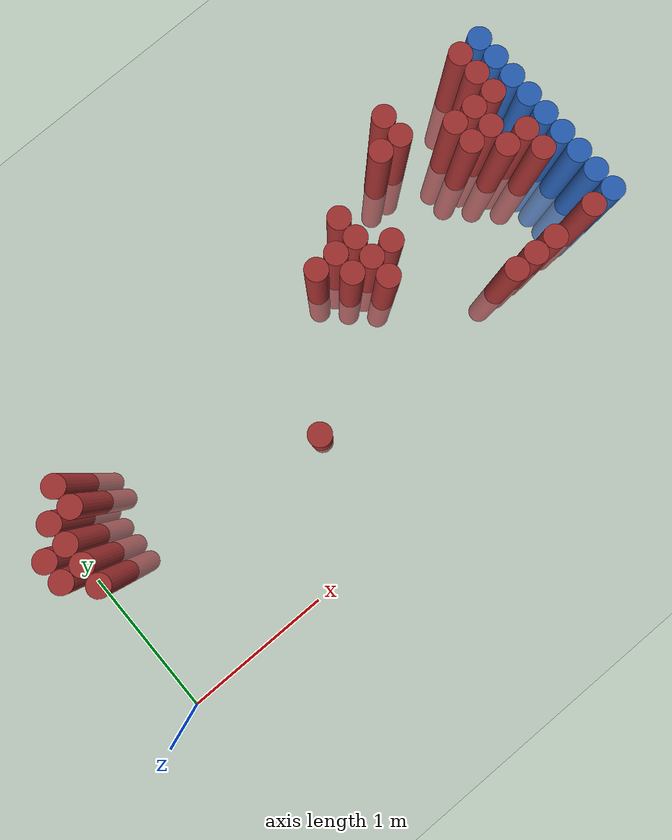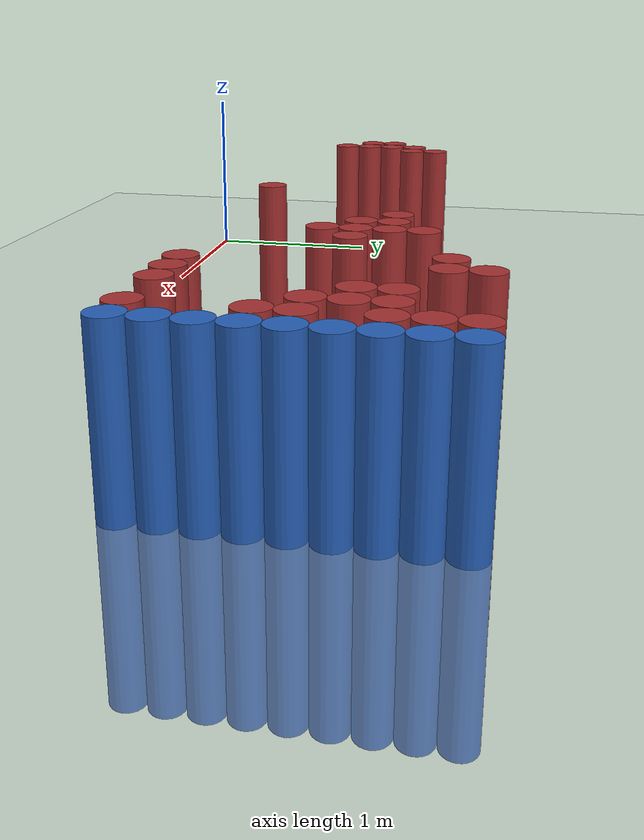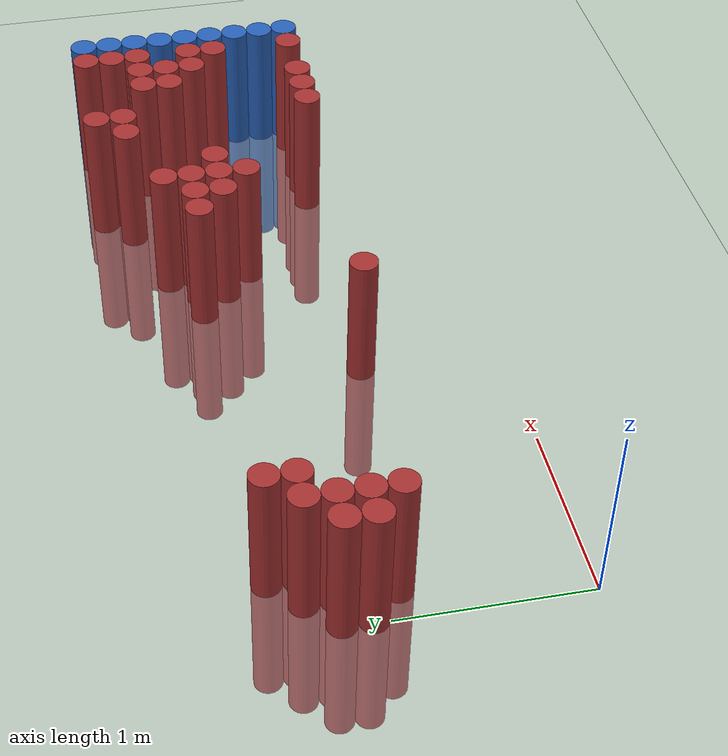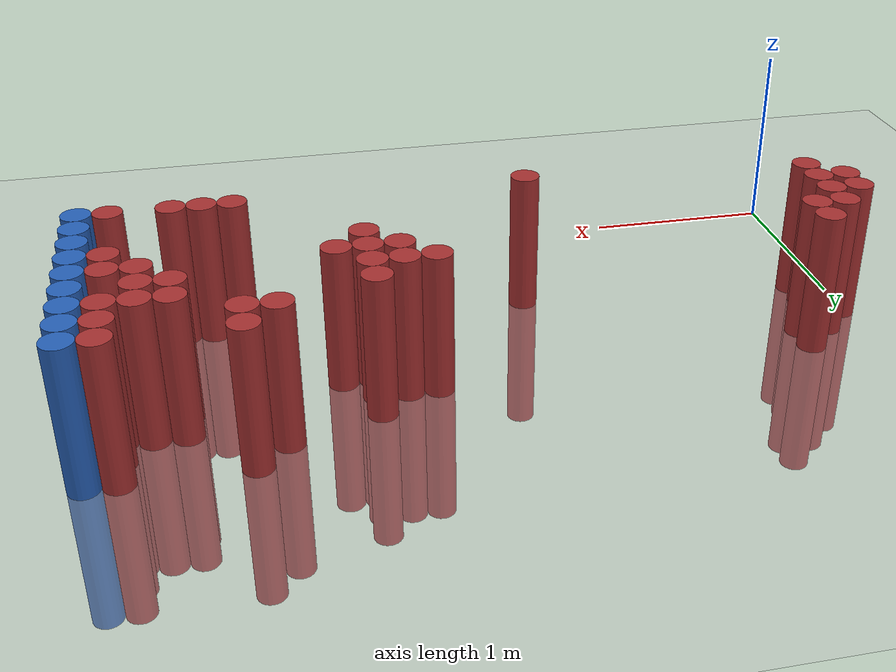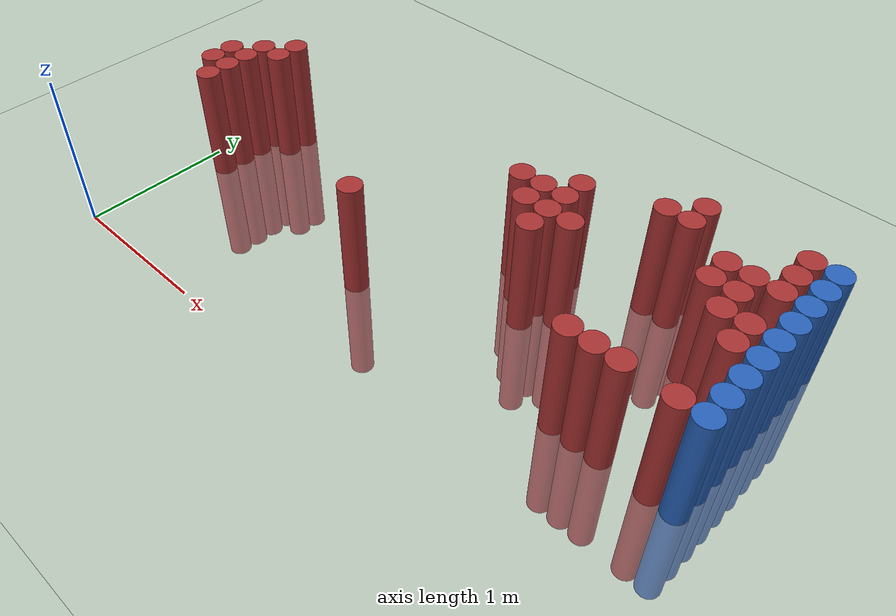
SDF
<sdf version="1.6">
 <world name="default">
  <model name="ground_plane">
   <static>1</static>
   <link name="link">
    <collision name="collision">
     <geometry><plane><normal>0 0 1</normal><size>100 100</size></plane></geometry>
     <surface><friction><ode><mu>100</mu><mu2>50</mu2></ode></friction></surface>
    </collision>
    <visual name="visual">
     <cast_shadows>0</cast_shadows>
     <geometry><plane><normal>0 0 1</normal><size>100 100</size></plane></geometry>
     <material>
      <script><uri>file://media/materials/scripts/gazebo.material</uri><name>Gazebo/Grey</name></script>
     </material>
    </visual>
   </link>
  </model>
  <model name="unit_cylinder_124">
   <static>1</static>
   <pose>3.925000 0.775000 0.000000 0.000000 0.000000 0.000000</pose>
   <link name="link">
    <inertial>
     <mass>1</mass>
     <inertia><ixx>0.145833</ixx><ixy>0</ixy><ixz>0</ixz><iyy>0.145833</iyy><iyz>0</iyz><izz>0.125</izz></inertia>
    </inertial>
    <collision name="collision">
     <geometry><cylinder><radius>0.075000</radius><length>1.5</length></cylinder></geometry>
    </collision>
    <visual name="visual">
     <geometry><cylinder><radius>0.075000</radius><length>1.5</length></cylinder></geometry>
     <material>
      <ambient>0.152000 0.379000 0.720000 1</ambient>
      <diffuse>0.152000 0.379000 0.720000 1</diffuse>
     </material>
     <material>
      <script><name>Gazebo/Grey</name><uri>file://media/materials/scripts/gazebo.material</uri></script>
     </material>
    </visual>
   </link>
  </model>
  <model name="unit_cylinder_126">
   <static>1</static>
   <pose>3.925000 0.925000 0.000000 0.000000 0.000000 0.000000</pose>
   <link name="link">
    <inertial>
     <mass>1</mass>
     <inertia><ixx>0.145833</ixx><ixy>0</ixy><ixz>0</ixz><iyy>0.145833</iyy><iyz>0</iyz><izz>0.125</izz></inertia>
    </inertial>
    <collision name="collision">
     <geometry><cylinder><radius>0.075000</radius><length>1.5</length></cylinder></geometry>
    </collision>
    <visual name="visual">
     <geometry><cylinder><radius>0.075000</radius><length>1.5</length></cylinder></geometry>
     <material>
      <ambient>0.152000 0.379000 0.720000 1</ambient>
      <diffuse>0.152000 0.379000 0.720000 1</diffuse>
     </material>
     <material>
      <script><name>Gazebo/Grey</name><uri>file://media/materials/scripts/gazebo.material</uri></script>
     </material>
    </visual>
   </link>
  </model>
  <model name="unit_cylinder_128">
   <static>1</static>
   <pose>3.925000 1.075000 0.000000 0.000000 0.000000 0.000000</pose>
   <link name="link">
    <inertial>
     <mass>1</mass>
     <inertia><ixx>0.145833</ixx><ixy>0</ixy><ixz>0</ixz><iyy>0.145833</iyy><iyz>0</iyz><izz>0.125</izz></inertia>
    </inertial>
    <collision name="collision">
     <geometry><cylinder><radius>0.075000</radius><length>1.5</length></cylinder></geometry>
    </collision>
    <visual name="visual">
     <geometry><cylinder><radius>0.075000</radius><length>1.5</length></cylinder></geometry>
     <material>
      <ambient>0.152000 0.379000 0.720000 1</ambient>
      <diffuse>0.152000 0.379000 0.720000 1</diffuse>
     </material>
     <material>
      <script><name>Gazebo/Grey</name><uri>file://media/materials/scripts/gazebo.material</uri></script>
     </material>
    </visual>
   </link>
  </model>
  <model name="unit_cylinder_130">
   <static>1</static>
   <pose>3.925000 1.225000 0.000000 0.000000 0.000000 0.000000</pose>
   <link name="link">
    <inertial>
     <mass>1</mass>
     <inertia><ixx>0.145833</ixx><ixy>0</ixy><ixz>0</ixz><iyy>0.145833</iyy><iyz>0</iyz><izz>0.125</izz></inertia>
    </inertial>
    <collision name="collision">
     <geometry><cylinder><radius>0.075000</radius><length>1.5</length></cylinder></geometry>
    </collision>
    <visual name="visual">
     <geometry><cylinder><radius>0.075000</radius><length>1.5</length></cylinder></geometry>
     <material>
      <ambient>0.152000 0.379000 0.720000 1</ambient>
      <diffuse>0.152000 0.379000 0.720000 1</diffuse>
     </material>
     <material>
      <script><name>Gazebo/Grey</name><uri>file://media/materials/scripts/gazebo.material</uri></script>
     </material>
    </visual>
   </link>
  </model>
  <model name="unit_cylinder_132">
   <static>1</static>
   <pose>3.925000 1.375000 0.000000 0.000000 0.000000 0.000000</pose>
   <link name="link">
    <inertial>
     <mass>1</mass>
     <inertia><ixx>0.145833</ixx><ixy>0</ixy><ixz>0</ixz><iyy>0.145833</iyy><iyz>0</iyz><izz>0.125</izz></inertia>
    </inertial>
    <collision name="collision">
     <geometry><cylinder><radius>0.075000</radius><length>1.5</length></cylinder></geometry>
    </collision>
    <visual name="visual">
     <geometry><cylinder><radius>0.075000</radius><length>1.5</length></cylinder></geometry>
     <material>
      <ambient>0.152000 0.379000 0.720000 1</ambient>
      <diffuse>0.152000 0.379000 0.720000 1</diffuse>
     </material>
     <material>
      <script><name>Gazebo/Grey</name><uri>file://media/materials/scripts/gazebo.material</uri></script>
     </material>
    </visual>
   </link>
  </model>
  <model name="unit_cylinder_134">
   <static>1</static>
   <pose>3.925000 1.525000 0.000000 0.000000 0.000000 0.000000</pose>
   <link name="link">
    <inertial>
     <mass>1</mass>
     <inertia><ixx>0.145833</ixx><ixy>0</ixy><ixz>0</ixz><iyy>0.145833</iyy><iyz>0</iyz><izz>0.125</izz></inertia>
    </inertial>
    <collision name="collision">
     <geometry><cylinder><radius>0.075000</radius><length>1.5</length></cylinder></geometry>
    </collision>
    <visual name="visual">
     <geometry><cylinder><radius>0.075000</radius><length>1.5</length></cylinder></geometry>
     <material>
      <ambient>0.152000 0.379000 0.720000 1</ambient>
      <diffuse>0.152000 0.379000 0.720000 1</diffuse>
     </material>
     <material>
      <script><name>Gazebo/Grey</name><uri>file://media/materials/scripts/gazebo.material</uri></script>
     </material>
    </visual>
   </link>
  </model>
  <model name="unit_cylinder_136">
   <static>1</static>
   <pose>3.925000 1.675000 0.000000 0.000000 0.000000 0.000000</pose>
   <link name="link">
    <inertial>
     <mass>1</mass>
     <inertia><ixx>0.145833</ixx><ixy>0</ixy><ixz>0</ixz><iyy>0.145833</iyy><iyz>0</iyz><izz>0.125</izz></inertia>
    </inertial>
    <collision name="collision">
     <geometry><cylinder><radius>0.075000</radius><length>1.5</length></cylinder></geometry>
    </collision>
    <visual name="visual">
     <geometry><cylinder><radius>0.075000</radius><length>1.5</length></cylinder></geometry>
     <material>
      <ambient>0.152000 0.379000 0.720000 1</ambient>
      <diffuse>0.152000 0.379000 0.720000 1</diffuse>
     </material>
     <material>
      <script><name>Gazebo/Grey</name><uri>file://media/materials/scripts/gazebo.material</uri></script>
     </material>
    </visual>
   </link>
  </model>
  <model name="unit_cylinder_138">
   <static>1</static>
   <pose>3.925000 1.825000 0.000000 0.000000 0.000000 0.000000</pose>
   <link name="link">
    <inertial>
     <mass>1</mass>
     <inertia><ixx>0.145833</ixx><ixy>0</ixy><ixz>0</ixz><iyy>0.145833</iyy><iyz>0</iyz><izz>0.125</izz></inertia>
    </inertial>
    <collision name="collision">
     <geometry><cylinder><radius>0.075000</radius><length>1.5</length></cylinder></geometry>
    </collision>
    <visual name="visual">
     <geometry><cylinder><radius>0.075000</radius><length>1.5</length></cylinder></geometry>
     <material>
      <ambient>0.152000 0.379000 0.720000 1</ambient>
      <diffuse>0.152000 0.379000 0.720000 1</diffuse>
     </material>
     <material>
      <script><name>Gazebo/Grey</name><uri>file://media/materials/scripts/gazebo.material</uri></script>
     </material>
    </visual>
   </link>
  </model>
  <model name="unit_cylinder_140">
   <static>1</static>
   <pose>3.925000 1.975000 0.000000 0.000000 0.000000 0.000000</pose>
   <link name="link">
    <inertial>
     <mass>1</mass>
     <inertia><ixx>0.145833</ixx><ixy>0</ixy><ixz>0</ixz><iyy>0.145833</iyy><iyz>0</iyz><izz>0.125</izz></inertia>
    </inertial>
    <collision name="collision">
     <geometry><cylinder><radius>0.075000</radius><length>1.5</length></cylinder></geometry>
    </collision>
    <visual name="visual">
     <geometry><cylinder><radius>0.075000</radius><length>1.5</length></cylinder></geometry>
     <material>
      <ambient>0.152000 0.379000 0.720000 1</ambient>
      <diffuse>0.152000 0.379000 0.720000 1</diffuse>
     </material>
     <material>
      <script><name>Gazebo/Grey</name><uri>file://media/materials/scripts/gazebo.material</uri></script>
     </material>
    </visual>
   </link>
  </model>
  <model name="unit_cylinder_320">
   <static>1</static>
   <pose>0.025000 1.075000 0.000000 0.000000 0.000000 0.000000</pose>
   <link name="link">
    <inertial>
     <mass>1</mass>
     <inertia><ixx>0.145833</ixx><ixy>0</ixy><ixz>0</ixz><iyy>0.145833</iyy><iyz>0</iyz><izz>0.125</izz></inertia>
    </inertial>
    <collision name="collision">
     <geometry><cylinder><radius>0.075000</radius><length>1.5</length></cylinder></geometry>
    </collision>
    <visual name="visual">
     <geometry><cylinder><radius>0.075000</radius><length>1.5</length></cylinder></geometry>
     <material>
      <ambient>0.648000 0.192000 0.192000 1</ambient>
      <diffuse>0.648000 0.192000 0.192000 1</diffuse>
     </material>
     <material>
      <script><name>Gazebo/Grey</name><uri>file://media/materials/scripts/gazebo.material</uri></script>
     </material>
    </visual>
   </link>
  </model>
  <model name="unit_cylinder_321">
   <static>1</static>
   <pose>0.025000 1.225000 0.000000 0.000000 0.000000 0.000000</pose>
   <link name="link">
    <inertial>
     <mass>1</mass>
     <inertia><ixx>0.145833</ixx><ixy>0</ixy><ixz>0</ixz><iyy>0.145833</iyy><iyz>0</iyz><izz>0.125</izz></inertia>
    </inertial>
    <collision name="collision">
     <geometry><cylinder><radius>0.075000</radius><length>1.5</length></cylinder></geometry>
    </collision>
    <visual name="visual">
     <geometry><cylinder><radius>0.075000</radius><length>1.5</length></cylinder></geometry>
     <material>
      <ambient>0.648000 0.192000 0.192000 1</ambient>
      <diffuse>0.648000 0.192000 0.192000 1</diffuse>
     </material>
     <material>
      <script><name>Gazebo/Grey</name><uri>file://media/materials/scripts/gazebo.material</uri></script>
     </material>
    </visual>
   </link>
  </model>
  <model name="unit_cylinder_326">
   <static>1</static>
   <pose>0.175000 0.925000 0.000000 0.000000 0.000000 0.000000</pose>
   <link name="link">
    <inertial>
     <mass>1</mass>
     <inertia><ixx>0.145833</ixx><ixy>0</ixy><ixz>0</ixz><iyy>0.145833</iyy><iyz>0</iyz><izz>0.125</izz></inertia>
    </inertial>
    <collision name="collision">
     <geometry><cylinder><radius>0.075000</radius><length>1.5</length></cylinder></geometry>
    </collision>
    <visual name="visual">
     <geometry><cylinder><radius>0.075000</radius><length>1.5</length></cylinder></geometry>
     <material>
      <ambient>0.648000 0.192000 0.192000 1</ambient>
      <diffuse>0.648000 0.192000 0.192000 1</diffuse>
     </material>
     <material>
      <script><name>Gazebo/Grey</name><uri>file://media/materials/scripts/gazebo.material</uri></script>
     </material>
    </visual>
   </link>
  </model>
  <model name="unit_cylinder_327">
   <static>1</static>
   <pose>0.175000 1.075000 0.000000 0.000000 0.000000 0.000000</pose>
   <link name="link">
    <inertial>
     <mass>1</mass>
     <inertia><ixx>0.145833</ixx><ixy>0</ixy><ixz>0</ixz><iyy>0.145833</iyy><iyz>0</iyz><izz>0.125</izz></inertia>
    </inertial>
    <collision name="collision">
     <geometry><cylinder><radius>0.075000</radius><length>1.5</length></cylinder></geometry>
    </collision>
    <visual name="visual">
     <geometry><cylinder><radius>0.075000</radius><length>1.5</length></cylinder></geometry>
     <material>
      <ambient>0.648000 0.192000 0.192000 1</ambient>
      <diffuse>0.648000 0.192000 0.192000 1</diffuse>
     </material>
     <material>
      <script><name>Gazebo/Grey</name><uri>file://media/materials/scripts/gazebo.material</uri></script>
     </material>
    </visual>
   </link>
  </model>
  <model name="unit_cylinder_328">
   <static>1</static>
   <pose>0.175000 1.225000 0.000000 0.000000 0.000000 0.000000</pose>
   <link name="link">
    <inertial>
     <mass>1</mass>
     <inertia><ixx>0.145833</ixx><ixy>0</ixy><ixz>0</ixz><iyy>0.145833</iyy><iyz>0</iyz><izz>0.125</izz></inertia>
    </inertial>
    <collision name="collision">
     <geometry><cylinder><radius>0.075000</radius><length>1.5</length></cylinder></geometry>
    </collision>
    <visual name="visual">
     <geometry><cylinder><radius>0.075000</radius><length>1.5</length></cylinder></geometry>
     <material>
      <ambient>0.648000 0.192000 0.192000 1</ambient>
      <diffuse>0.648000 0.192000 0.192000 1</diffuse>
     </material>
     <material>
      <script><name>Gazebo/Grey</name><uri>file://media/materials/scripts/gazebo.material</uri></script>
     </material>
    </visual>
   </link>
  </model>
  <model name="unit_cylinder_329">
   <static>1</static>
   <pose>0.175000 1.375000 0.000000 0.000000 0.000000 0.000000</pose>
   <link name="link">
    <inertial>
     <mass>1</mass>
     <inertia><ixx>0.145833</ixx><ixy>0</ixy><ixz>0</ixz><iyy>0.145833</iyy><iyz>0</iyz><izz>0.125</izz></inertia>
    </inertial>
    <collision name="collision">
     <geometry><cylinder><radius>0.075000</radius><length>1.5</length></cylinder></geometry>
    </collision>
    <visual name="visual">
     <geometry><cylinder><radius>0.075000</radius><length>1.5</length></cylinder></geometry>
     <material>
      <ambient>0.648000 0.192000 0.192000 1</ambient>
      <diffuse>0.648000 0.192000 0.192000 1</diffuse>
     </material>
     <material>
      <script><name>Gazebo/Grey</name><uri>file://media/materials/scripts/gazebo.material</uri></script>
     </material>
    </visual>
   </link>
  </model>
  <model name="unit_cylinder_334">
   <static>1</static>
   <pose>0.325000 1.375000 0.000000 0.000000 0.000000 0.000000</pose>
   <link name="link">
    <inertial>
     <mass>1</mass>
     <inertia><ixx>0.145833</ixx><ixy>0</ixy><ixz>0</ixz><iyy>0.145833</iyy><iyz>0</iyz><izz>0.125</izz></inertia>
    </inertial>
    <collision name="collision">
     <geometry><cylinder><radius>0.075000</radius><length>1.5</length></cylinder></geometry>
    </collision>
    <visual name="visual">
     <geometry><cylinder><radius>0.075000</radius><length>1.5</length></cylinder></geometry>
     <material>
      <ambient>0.648000 0.192000 0.192000 1</ambient>
      <diffuse>0.648000 0.192000 0.192000 1</diffuse>
     </material>
     <material>
      <script><name>Gazebo/Grey</name><uri>file://media/materials/scripts/gazebo.material</uri></script>
     </material>
    </visual>
   </link>
  </model>
  <model name="unit_cylinder_335">
   <static>1</static>
   <pose>0.325000 1.525000 0.000000 0.000000 0.000000 0.000000</pose>
   <link name="link">
    <inertial>
     <mass>1</mass>
     <inertia><ixx>0.145833</ixx><ixy>0</ixy><ixz>0</ixz><iyy>0.145833</iyy><iyz>0</iyz><izz>0.125</izz></inertia>
    </inertial>
    <collision name="collision">
     <geometry><cylinder><radius>0.075000</radius><length>1.5</length></cylinder></geometry>
    </collision>
    <visual name="visual">
     <geometry><cylinder><radius>0.075000</radius><length>1.5</length></cylinder></geometry>
     <material>
      <ambient>0.648000 0.192000 0.192000 1</ambient>
      <diffuse>0.648000 0.192000 0.192000 1</diffuse>
     </material>
     <material>
      <script><name>Gazebo/Grey</name><uri>file://media/materials/scripts/gazebo.material</uri></script>
     </material>
    </visual>
   </link>
  </model>
  <model name="unit_cylinder_359">
   <static>1</static>
   <pose>1.675000 0.775000 0.000000 0.000000 0.000000 0.000000</pose>
   <link name="link">
    <inertial>
     <mass>1</mass>
     <inertia><ixx>0.145833</ixx><ixy>0</ixy><ixz>0</ixz><iyy>0.145833</iyy><iyz>0</iyz><izz>0.125</izz></inertia>
    </inertial>
    <collision name="collision">
     <geometry><cylinder><radius>0.075000</radius><length>1.5</length></cylinder></geometry>
    </collision>
    <visual name="visual">
     <geometry><cylinder><radius>0.075000</radius><length>1.5</length></cylinder></geometry>
     <material>
      <ambient>0.648000 0.192000 0.192000 1</ambient>
      <diffuse>0.648000 0.192000 0.192000 1</diffuse>
     </material>
     <material>
      <script><name>Gazebo/Grey</name><uri>file://media/materials/scripts/gazebo.material</uri></script>
     </material>
    </visual>
   </link>
  </model>
  <model name="unit_cylinder_372">
   <static>1</static>
   <pose>2.275000 1.525000 0.000000 0.000000 0.000000 0.000000</pose>
   <link name="link">
    <inertial>
     <mass>1</mass>
     <inertia><ixx>0.145833</ixx><ixy>0</ixy><ixz>0</ixz><iyy>0.145833</iyy><iyz>0</iyz><izz>0.125</izz></inertia>
    </inertial>
    <collision name="collision">
     <geometry><cylinder><radius>0.075000</radius><length>1.5</length></cylinder></geometry>
    </collision>
    <visual name="visual">
     <geometry><cylinder><radius>0.075000</radius><length>1.5</length></cylinder></geometry>
     <material>
      <ambient>0.648000 0.192000 0.192000 1</ambient>
      <diffuse>0.648000 0.192000 0.192000 1</diffuse>
     </material>
     <material>
      <script><name>Gazebo/Grey</name><uri>file://media/materials/scripts/gazebo.material</uri></script>
     </material>
    </visual>
   </link>
  </model>
  <model name="unit_cylinder_377">
   <static>1</static>
   <pose>2.425000 1.375000 0.000000 0.000000 0.000000 0.000000</pose>
   <link name="link">
    <inertial>
     <mass>1</mass>
     <inertia><ixx>0.145833</ixx><ixy>0</ixy><ixz>0</ixz><iyy>0.145833</iyy><iyz>0</iyz><izz>0.125</izz></inertia>
    </inertial>
    <collision name="collision">
     <geometry><cylinder><radius>0.075000</radius><length>1.5</length></cylinder></geometry>
    </collision>
    <visual name="visual">
     <geometry><cylinder><radius>0.075000</radius><length>1.5</length></cylinder></geometry>
     <material>
      <ambient>0.648000 0.192000 0.192000 1</ambient>
      <diffuse>0.648000 0.192000 0.192000 1</diffuse>
     </material>
     <material>
      <script><name>Gazebo/Grey</name><uri>file://media/materials/scripts/gazebo.material</uri></script>
     </material>
    </visual>
   </link>
  </model>
  <model name="unit_cylinder_378">
   <static>1</static>
   <pose>2.425000 1.525000 0.000000 0.000000 0.000000 0.000000</pose>
   <link name="link">
    <inertial>
     <mass>1</mass>
     <inertia><ixx>0.145833</ixx><ixy>0</ixy><ixz>0</ixz><iyy>0.145833</iyy><iyz>0</iyz><izz>0.125</izz></inertia>
    </inertial>
    <collision name="collision">
     <geometry><cylinder><radius>0.075000</radius><length>1.5</length></cylinder></geometry>
    </collision>
    <visual name="visual">
     <geometry><cylinder><radius>0.075000</radius><length>1.5</length></cylinder></geometry>
     <material>
      <ambient>0.648000 0.192000 0.192000 1</ambient>
      <diffuse>0.648000 0.192000 0.192000 1</diffuse>
     </material>
     <material>
      <script><name>Gazebo/Grey</name><uri>file://media/materials/scripts/gazebo.material</uri></script>
     </material>
    </visual>
   </link>
  </model>
  <model name="unit_cylinder_383">
   <static>1</static>
   <pose>2.575000 1.225000 0.000000 0.000000 0.000000 0.000000</pose>
   <link name="link">
    <inertial>
     <mass>1</mass>
     <inertia><ixx>0.145833</ixx><ixy>0</ixy><ixz>0</ixz><iyy>0.145833</iyy><iyz>0</iyz><izz>0.125</izz></inertia>
    </inertial>
    <collision name="collision">
     <geometry><cylinder><radius>0.075000</radius><length>1.5</length></cylinder></geometry>
    </collision>
    <visual name="visual">
     <geometry><cylinder><radius>0.075000</radius><length>1.5</length></cylinder></geometry>
     <material>
      <ambient>0.648000 0.192000 0.192000 1</ambient>
      <diffuse>0.648000 0.192000 0.192000 1</diffuse>
     </material>
     <material>
      <script><name>Gazebo/Grey</name><uri>file://media/materials/scripts/gazebo.material</uri></script>
     </material>
    </visual>
   </link>
  </model>
  <model name="unit_cylinder_384">
   <static>1</static>
   <pose>2.575000 1.375000 0.000000 0.000000 0.000000 0.000000</pose>
   <link name="link">
    <inertial>
     <mass>1</mass>
     <inertia><ixx>0.145833</ixx><ixy>0</ixy><ixz>0</ixz><iyy>0.145833</iyy><iyz>0</iyz><izz>0.125</izz></inertia>
    </inertial>
    <collision name="collision">
     <geometry><cylinder><radius>0.075000</radius><length>1.5</length></cylinder></geometry>
    </collision>
    <visual name="visual">
     <geometry><cylinder><radius>0.075000</radius><length>1.5</length></cylinder></geometry>
     <material>
      <ambient>0.648000 0.192000 0.192000 1</ambient>
      <diffuse>0.648000 0.192000 0.192000 1</diffuse>
     </material>
     <material>
      <script><name>Gazebo/Grey</name><uri>file://media/materials/scripts/gazebo.material</uri></script>
     </material>
    </visual>
   </link>
  </model>
  <model name="unit_cylinder_385">
   <static>1</static>
   <pose>2.575000 1.525000 0.000000 0.000000 0.000000 0.000000</pose>
   <link name="link">
    <inertial>
     <mass>1</mass>
     <inertia><ixx>0.145833</ixx><ixy>0</ixy><ixz>0</ixz><iyy>0.145833</iyy><iyz>0</iyz><izz>0.125</izz></inertia>
    </inertial>
    <collision name="collision">
     <geometry><cylinder><radius>0.075000</radius><length>1.5</length></cylinder></geometry>
    </collision>
    <visual name="visual">
     <geometry><cylinder><radius>0.075000</radius><length>1.5</length></cylinder></geometry>
     <material>
      <ambient>0.648000 0.192000 0.192000 1</ambient>
      <diffuse>0.648000 0.192000 0.192000 1</diffuse>
     </material>
     <material>
      <script><name>Gazebo/Grey</name><uri>file://media/materials/scripts/gazebo.material</uri></script>
     </material>
    </visual>
   </link>
  </model>
  <model name="unit_cylinder_386">
   <static>1</static>
   <pose>2.575000 1.675000 0.000000 0.000000 0.000000 0.000000</pose>
   <link name="link">
    <inertial>
     <mass>1</mass>
     <inertia><ixx>0.145833</ixx><ixy>0</ixy><ixz>0</ixz><iyy>0.145833</iyy><iyz>0</iyz><izz>0.125</izz></inertia>
    </inertial>
    <collision name="collision">
     <geometry><cylinder><radius>0.075000</radius><length>1.5</length></cylinder></geometry>
    </collision>
    <visual name="visual">
     <geometry><cylinder><radius>0.075000</radius><length>1.5</length></cylinder></geometry>
     <material>
      <ambient>0.648000 0.192000 0.192000 1</ambient>
      <diffuse>0.648000 0.192000 0.192000 1</diffuse>
     </material>
     <material>
      <script><name>Gazebo/Grey</name><uri>file://media/materials/scripts/gazebo.material</uri></script>
     </material>
    </visual>
   </link>
  </model>
  <model name="unit_cylinder_390">
   <static>1</static>
   <pose>2.725000 1.375000 0.000000 0.000000 0.000000 0.000000</pose>
   <link name="link">
    <inertial>
     <mass>1</mass>
     <inertia><ixx>0.145833</ixx><ixy>0</ixy><ixz>0</ixz><iyy>0.145833</iyy><iyz>0</iyz><izz>0.125</izz></inertia>
    </inertial>
    <collision name="collision">
     <geometry><cylinder><radius>0.075000</radius><length>1.5</length></cylinder></geometry>
    </collision>
    <visual name="visual">
     <geometry><cylinder><radius>0.075000</radius><length>1.5</length></cylinder></geometry>
     <material>
      <ambient>0.648000 0.192000 0.192000 1</ambient>
      <diffuse>0.648000 0.192000 0.192000 1</diffuse>
     </material>
     <material>
      <script><name>Gazebo/Grey</name><uri>file://media/materials/scripts/gazebo.material</uri></script>
     </material>
    </visual>
   </link>
  </model>
  <model name="unit_cylinder_400">
   <static>1</static>
   <pose>3.025000 1.825000 0.000000 0.000000 0.000000 0.000000</pose>
   <link name="link">
    <inertial>
     <mass>1</mass>
     <inertia><ixx>0.145833</ixx><ixy>0</ixy><ixz>0</ixz><iyy>0.145833</iyy><iyz>0</iyz><izz>0.125</izz></inertia>
    </inertial>
    <collision name="collision">
     <geometry><cylinder><radius>0.075000</radius><length>1.5</length></cylinder></geometry>
    </collision>
    <visual name="visual">
     <geometry><cylinder><radius>0.075000</radius><length>1.5</length></cylinder></geometry>
     <material>
      <ambient>0.648000 0.192000 0.192000 1</ambient>
      <diffuse>0.648000 0.192000 0.192000 1</diffuse>
     </material>
     <material>
      <script><name>Gazebo/Grey</name><uri>file://media/materials/scripts/gazebo.material</uri></script>
     </material>
    </visual>
   </link>
  </model>
  <model name="unit_cylinder_407">
   <static>1</static>
   <pose>3.175000 0.775000 0.000000 0.000000 0.000000 0.000000</pose>
   <link name="link">
    <inertial>
     <mass>1</mass>
     <inertia><ixx>0.145833</ixx><ixy>0</ixy><ixz>0</ixz><iyy>0.145833</iyy><iyz>0</iyz><izz>0.125</izz></inertia>
    </inertial>
    <collision name="collision">
     <geometry><cylinder><radius>0.075000</radius><length>1.5</length></cylinder></geometry>
    </collision>
    <visual name="visual">
     <geometry><cylinder><radius>0.075000</radius><length>1.5</length></cylinder></geometry>
     <material>
      <ambient>0.648000 0.192000 0.192000 1</ambient>
      <diffuse>0.648000 0.192000 0.192000 1</diffuse>
     </material>
     <material>
      <script><name>Gazebo/Grey</name><uri>file://media/materials/scripts/gazebo.material</uri></script>
     </material>
    </visual>
   </link>
  </model>
  <model name="unit_cylinder_408">
   <static>1</static>
   <pose>3.175000 1.825000 0.000000 0.000000 0.000000 0.000000</pose>
   <link name="link">
    <inertial>
     <mass>1</mass>
     <inertia><ixx>0.145833</ixx><ixy>0</ixy><ixz>0</ixz><iyy>0.145833</iyy><iyz>0</iyz><izz>0.125</izz></inertia>
    </inertial>
    <collision name="collision">
     <geometry><cylinder><radius>0.075000</radius><length>1.5</length></cylinder></geometry>
    </collision>
    <visual name="visual">
     <geometry><cylinder><radius>0.075000</radius><length>1.5</length></cylinder></geometry>
     <material>
      <ambient>0.648000 0.192000 0.192000 1</ambient>
      <diffuse>0.648000 0.192000 0.192000 1</diffuse>
     </material>
     <material>
      <script><name>Gazebo/Grey</name><uri>file://media/materials/scripts/gazebo.material</uri></script>
     </material>
    </visual>
   </link>
  </model>
  <model name="unit_cylinder_409">
   <static>1</static>
   <pose>3.175000 1.975000 0.000000 0.000000 0.000000 0.000000</pose>
   <link name="link">
    <inertial>
     <mass>1</mass>
     <inertia><ixx>0.145833</ixx><ixy>0</ixy><ixz>0</ixz><iyy>0.145833</iyy><iyz>0</iyz><izz>0.125</izz></inertia>
    </inertial>
    <collision name="collision">
     <geometry><cylinder><radius>0.075000</radius><length>1.5</length></cylinder></geometry>
    </collision>
    <visual name="visual">
     <geometry><cylinder><radius>0.075000</radius><length>1.5</length></cylinder></geometry>
     <material>
      <ambient>0.648000 0.192000 0.192000 1</ambient>
      <diffuse>0.648000 0.192000 0.192000 1</diffuse>
     </material>
     <material>
      <script><name>Gazebo/Grey</name><uri>file://media/materials/scripts/gazebo.material</uri></script>
     </material>
    </visual>
   </link>
  </model>
  <model name="unit_cylinder_416">
   <static>1</static>
   <pose>3.325000 0.775000 0.000000 0.000000 0.000000 0.000000</pose>
   <link name="link">
    <inertial>
     <mass>1</mass>
     <inertia><ixx>0.145833</ixx><ixy>0</ixy><ixz>0</ixz><iyy>0.145833</iyy><iyz>0</iyz><izz>0.125</izz></inertia>
    </inertial>
    <collision name="collision">
     <geometry><cylinder><radius>0.075000</radius><length>1.5</length></cylinder></geometry>
    </collision>
    <visual name="visual">
     <geometry><cylinder><radius>0.075000</radius><length>1.5</length></cylinder></geometry>
     <material>
      <ambient>0.648000 0.192000 0.192000 1</ambient>
      <diffuse>0.648000 0.192000 0.192000 1</diffuse>
     </material>
     <material>
      <script><name>Gazebo/Grey</name><uri>file://media/materials/scripts/gazebo.material</uri></script>
     </material>
    </visual>
   </link>
  </model>
  <model name="unit_cylinder_422">
   <static>1</static>
   <pose>3.475000 0.775000 0.000000 0.000000 0.000000 0.000000</pose>
   <link name="link">
    <inertial>
     <mass>1</mass>
     <inertia><ixx>0.145833</ixx><ixy>0</ixy><ixz>0</ixz><iyy>0.145833</iyy><iyz>0</iyz><izz>0.125</izz></inertia>
    </inertial>
    <collision name="collision">
     <geometry><cylinder><radius>0.075000</radius><length>1.5</length></cylinder></geometry>
    </collision>
    <visual name="visual">
     <geometry><cylinder><radius>0.075000</radius><length>1.5</length></cylinder></geometry>
     <material>
      <ambient>0.648000 0.192000 0.192000 1</ambient>
      <diffuse>0.648000 0.192000 0.192000 1</diffuse>
     </material>
     <material>
      <script><name>Gazebo/Grey</name><uri>file://media/materials/scripts/gazebo.material</uri></script>
     </material>
    </visual>
   </link>
  </model>
  <model name="unit_cylinder_423">
   <static>1</static>
   <pose>3.475000 1.525000 0.000000 0.000000 0.000000 0.000000</pose>
   <link name="link">
    <inertial>
     <mass>1</mass>
     <inertia><ixx>0.145833</ixx><ixy>0</ixy><ixz>0</ixz><iyy>0.145833</iyy><iyz>0</iyz><izz>0.125</izz></inertia>
    </inertial>
    <collision name="collision">
     <geometry><cylinder><radius>0.075000</radius><length>1.5</length></cylinder></geometry>
    </collision>
    <visual name="visual">
     <geometry><cylinder><radius>0.075000</radius><length>1.5</length></cylinder></geometry>
     <material>
      <ambient>0.648000 0.192000 0.192000 1</ambient>
      <diffuse>0.648000 0.192000 0.192000 1</diffuse>
     </material>
     <material>
      <script><name>Gazebo/Grey</name><uri>file://media/materials/scripts/gazebo.material</uri></script>
     </material>
    </visual>
   </link>
  </model>
  <model name="unit_cylinder_424">
   <static>1</static>
   <pose>3.475000 1.675000 0.000000 0.000000 0.000000 0.000000</pose>
   <link name="link">
    <inertial>
     <mass>1</mass>
     <inertia><ixx>0.145833</ixx><ixy>0</ixy><ixz>0</ixz><iyy>0.145833</iyy><iyz>0</iyz><izz>0.125</izz></inertia>
    </inertial>
    <collision name="collision">
     <geometry><cylinder><radius>0.075000</radius><length>1.5</length></cylinder></geometry>
    </collision>
    <visual name="visual">
     <geometry><cylinder><radius>0.075000</radius><length>1.5</length></cylinder></geometry>
     <material>
      <ambient>0.648000 0.192000 0.192000 1</ambient>
      <diffuse>0.648000 0.192000 0.192000 1</diffuse>
     </material>
     <material>
      <script><name>Gazebo/Grey</name><uri>file://media/materials/scripts/gazebo.material</uri></script>
     </material>
    </visual>
   </link>
  </model>
  <model name="unit_cylinder_426">
   <static>1</static>
   <pose>3.625000 1.375000 0.000000 0.000000 0.000000 0.000000</pose>
   <link name="link">
    <inertial>
     <mass>1</mass>
     <inertia><ixx>0.145833</ixx><ixy>0</ixy><ixz>0</ixz><iyy>0.145833</iyy><iyz>0</iyz><izz>0.125</izz></inertia>
    </inertial>
    <collision name="collision">
     <geometry><cylinder><radius>0.075000</radius><length>1.5</length></cylinder></geometry>
    </collision>
    <visual name="visual">
     <geometry><cylinder><radius>0.075000</radius><length>1.5</length></cylinder></geometry>
     <material>
      <ambient>0.648000 0.192000 0.192000 1</ambient>
      <diffuse>0.648000 0.192000 0.192000 1</diffuse>
     </material>
     <material>
      <script><name>Gazebo/Grey</name><uri>file://media/materials/scripts/gazebo.material</uri></script>
     </material>
    </visual>
   </link>
  </model>
  <model name="unit_cylinder_427">
   <static>1</static>
   <pose>3.625000 1.525000 0.000000 0.000000 0.000000 0.000000</pose>
   <link name="link">
    <inertial>
     <mass>1</mass>
     <inertia><ixx>0.145833</ixx><ixy>0</ixy><ixz>0</ixz><iyy>0.145833</iyy><iyz>0</iyz><izz>0.125</izz></inertia>
    </inertial>
    <collision name="collision">
     <geometry><cylinder><radius>0.075000</radius><length>1.5</length></cylinder></geometry>
    </collision>
    <visual name="visual">
     <geometry><cylinder><radius>0.075000</radius><length>1.5</length></cylinder></geometry>
     <material>
      <ambient>0.648000 0.192000 0.192000 1</ambient>
      <diffuse>0.648000 0.192000 0.192000 1</diffuse>
     </material>
     <material>
      <script><name>Gazebo/Grey</name><uri>file://media/materials/scripts/gazebo.material</uri></script>
     </material>
    </visual>
   </link>
  </model>
  <model name="unit_cylinder_428">
   <static>1</static>
   <pose>3.625000 1.675000 0.000000 0.000000 0.000000 0.000000</pose>
   <link name="link">
    <inertial>
     <mass>1</mass>
     <inertia><ixx>0.145833</ixx><ixy>0</ixy><ixz>0</ixz><iyy>0.145833</iyy><iyz>0</iyz><izz>0.125</izz></inertia>
    </inertial>
    <collision name="collision">
     <geometry><cylinder><radius>0.075000</radius><length>1.5</length></cylinder></geometry>
    </collision>
    <visual name="visual">
     <geometry><cylinder><radius>0.075000</radius><length>1.5</length></cylinder></geometry>
     <material>
      <ambient>0.648000 0.192000 0.192000 1</ambient>
      <diffuse>0.648000 0.192000 0.192000 1</diffuse>
     </material>
     <material>
      <script><name>Gazebo/Grey</name><uri>file://media/materials/scripts/gazebo.material</uri></script>
     </material>
    </visual>
   </link>
  </model>
  <model name="unit_cylinder_435">
   <static>1</static>
   <pose>3.775000 0.775000 0.000000 0.000000 0.000000 0.000000</pose>
   <link name="link">
    <inertial>
     <mass>1</mass>
     <inertia><ixx>0.145833</ixx><ixy>0</ixy><ixz>0</ixz><iyy>0.145833</iyy><iyz>0</iyz><izz>0.125</izz></inertia>
    </inertial>
    <collision name="collision">
     <geometry><cylinder><radius>0.075000</radius><length>1.5</length></cylinder></geometry>
    </collision>
    <visual name="visual">
     <geometry><cylinder><radius>0.075000</radius><length>1.5</length></cylinder></geometry>
     <material>
      <ambient>0.648000 0.192000 0.192000 1</ambient>
      <diffuse>0.648000 0.192000 0.192000 1</diffuse>
     </material>
     <material>
      <script><name>Gazebo/Grey</name><uri>file://media/materials/scripts/gazebo.material</uri></script>
     </material>
    </visual>
   </link>
  </model>
  <model name="unit_cylinder_436">
   <static>1</static>
   <pose>3.775000 1.225000 0.000000 0.000000 0.000000 0.000000</pose>
   <link name="link">
    <inertial>
     <mass>1</mass>
     <inertia><ixx>0.145833</ixx><ixy>0</ixy><ixz>0</ixz><iyy>0.145833</iyy><iyz>0</iyz><izz>0.125</izz></inertia>
    </inertial>
    <collision name="collision">
     <geometry><cylinder><radius>0.075000</radius><length>1.5</length></cylinder></geometry>
    </collision>
    <visual name="visual">
     <geometry><cylinder><radius>0.075000</radius><length>1.5</length></cylinder></geometry>
     <material>
      <ambient>0.648000 0.192000 0.192000 1</ambient>
      <diffuse>0.648000 0.192000 0.192000 1</diffuse>
     </material>
     <material>
      <script><name>Gazebo/Grey</name><uri>file://media/materials/scripts/gazebo.material</uri></script>
     </material>
    </visual>
   </link>
  </model>
  <model name="unit_cylinder_437">
   <static>1</static>
   <pose>3.775000 1.375000 0.000000 0.000000 0.000000 0.000000</pose>
   <link name="link">
    <inertial>
     <mass>1</mass>
     <inertia><ixx>0.145833</ixx><ixy>0</ixy><ixz>0</ixz><iyy>0.145833</iyy><iyz>0</iyz><izz>0.125</izz></inertia>
    </inertial>
    <collision name="collision">
     <geometry><cylinder><radius>0.075000</radius><length>1.5</length></cylinder></geometry>
    </collision>
    <visual name="visual">
     <geometry><cylinder><radius>0.075000</radius><length>1.5</length></cylinder></geometry>
     <material>
      <ambient>0.648000 0.192000 0.192000 1</ambient>
      <diffuse>0.648000 0.192000 0.192000 1</diffuse>
     </material>
     <material>
      <script><name>Gazebo/Grey</name><uri>file://media/materials/scripts/gazebo.material</uri></script>
     </material>
    </visual>
   </link>
  </model>
  <model name="unit_cylinder_438">
   <static>1</static>
   <pose>3.775000 1.675000 0.000000 0.000000 0.000000 0.000000</pose>
   <link name="link">
    <inertial>
     <mass>1</mass>
     <inertia><ixx>0.145833</ixx><ixy>0</ixy><ixz>0</ixz><iyy>0.145833</iyy><iyz>0</iyz><izz>0.125</izz></inertia>
    </inertial>
    <collision name="collision">
     <geometry><cylinder><radius>0.075000</radius><length>1.5</length></cylinder></geometry>
    </collision>
    <visual name="visual">
     <geometry><cylinder><radius>0.075000</radius><length>1.5</length></cylinder></geometry>
     <material>
      <ambient>0.648000 0.192000 0.192000 1</ambient>
      <diffuse>0.648000 0.192000 0.192000 1</diffuse>
     </material>
     <material>
      <script><name>Gazebo/Grey</name><uri>file://media/materials/scripts/gazebo.material</uri></script>
     </material>
    </visual>
   </link>
  </model>
  <model name="unit_cylinder_439">
   <static>1</static>
   <pose>3.775000 1.825000 0.000000 0.000000 0.000000 0.000000</pose>
   <link name="link">
    <inertial>
     <mass>1</mass>
     <inertia><ixx>0.145833</ixx><ixy>0</ixy><ixz>0</ixz><iyy>0.145833</iyy><iyz>0</iyz><izz>0.125</izz></inertia>
    </inertial>
    <collision name="collision">
     <geometry><cylinder><radius>0.075000</radius><length>1.5</length></cylinder></geometry>
    </collision>
    <visual name="visual">
     <geometry><cylinder><radius>0.075000</radius><length>1.5</length></cylinder></geometry>
     <material>
      <ambient>0.648000 0.192000 0.192000 1</ambient>
      <diffuse>0.648000 0.192000 0.192000 1</diffuse>
     </material>
     <material>
      <script><name>Gazebo/Grey</name><uri>file://media/materials/scripts/gazebo.material</uri></script>
     </material>
    </visual>
   </link>
  </model>
  <model name="unit_cylinder_440">
   <static>1</static>
   <pose>3.775000 1.975000 0.000000 0.000000 0.000000 0.000000</pose>
   <link name="link">
    <inertial>
     <mass>1</mass>
     <inertia><ixx>0.145833</ixx><ixy>0</ixy><ixz>0</ixz><iyy>0.145833</iyy><iyz>0</iyz><izz>0.125</izz></inertia>
    </inertial>
    <collision name="collision">
     <geometry><cylinder><radius>0.075000</radius><length>1.5</length></cylinder></geometry>
    </collision>
    <visual name="visual">
     <geometry><cylinder><radius>0.075000</radius><length>1.5</length></cylinder></geometry>
     <material>
      <ambient>0.648000 0.192000 0.192000 1</ambient>
      <diffuse>0.648000 0.192000 0.192000 1</diffuse>
     </material>
     <material>
      <script><name>Gazebo/Grey</name><uri>file://media/materials/scripts/gazebo.material</uri></script>
     </material>
    </visual>
   </link>
  </model>
  <model name="unit_cylinder_475">
   <static>1</static>
   <pose>3.925000 0.775000 0.000000 0.000000 0.000000 0.000000</pose>
   <link name="link">
    <inertial>
     <mass>1</mass>
     <inertia><ixx>0.145833</ixx><ixy>0</ixy><ixz>0</ixz><iyy>0.145833</iyy><iyz>0</iyz><izz>0.125</izz></inertia>
    </inertial>
    <collision name="collision">
     <geometry><cylinder><radius>0.075000</radius><length>1.5</length></cylinder></geometry>
    </collision>
    <visual name="visual">
     <geometry><cylinder><radius>0.075000</radius><length>1.5</length></cylinder></geometry>
     <material>
      <ambient>0.152000 0.379000 0.720000 1</ambient>
      <diffuse>0.152000 0.379000 0.720000 1</diffuse>
     </material>
     <material>
      <script><name>Gazebo/Grey</name><uri>file://media/materials/scripts/gazebo.material</uri></script>
     </material>
    </visual>
   </link>
  </model>
  <model name="unit_cylinder_476">
   <static>1</static>
   <pose>3.925000 0.925000 0.000000 0.000000 0.000000 0.000000</pose>
   <link name="link">
    <inertial>
     <mass>1</mass>
     <inertia><ixx>0.145833</ixx><ixy>0</ixy><ixz>0</ixz><iyy>0.145833</iyy><iyz>0</iyz><izz>0.125</izz></inertia>
    </inertial>
    <collision name="collision">
     <geometry><cylinder><radius>0.075000</radius><length>1.5</length></cylinder></geometry>
    </collision>
    <visual name="visual">
     <geometry><cylinder><radius>0.075000</radius><length>1.5</length></cylinder></geometry>
     <material>
      <ambient>0.152000 0.379000 0.720000 1</ambient>
      <diffuse>0.152000 0.379000 0.720000 1</diffuse>
     </material>
     <material>
      <script><name>Gazebo/Grey</name><uri>file://media/materials/scripts/gazebo.material</uri></script>
     </material>
    </visual>
   </link>
  </model>
  <model name="unit_cylinder_477">
   <static>1</static>
   <pose>3.925000 1.075000 0.000000 0.000000 0.000000 0.000000</pose>
   <link name="link">
    <inertial>
     <mass>1</mass>
     <inertia><ixx>0.145833</ixx><ixy>0</ixy><ixz>0</ixz><iyy>0.145833</iyy><iyz>0</iyz><izz>0.125</izz></inertia>
    </inertial>
    <collision name="collision">
     <geometry><cylinder><radius>0.075000</radius><length>1.5</length></cylinder></geometry>
    </collision>
    <visual name="visual">
     <geometry><cylinder><radius>0.075000</radius><length>1.5</length></cylinder></geometry>
     <material>
      <ambient>0.152000 0.379000 0.720000 1</ambient>
      <diffuse>0.152000 0.379000 0.720000 1</diffuse>
     </material>
     <material>
      <script><name>Gazebo/Grey</name><uri>file://media/materials/scripts/gazebo.material</uri></script>
     </material>
    </visual>
   </link>
  </model>
  <model name="unit_cylinder_478">
   <static>1</static>
   <pose>3.925000 1.225000 0.000000 0.000000 0.000000 0.000000</pose>
   <link name="link">
    <inertial>
     <mass>1</mass>
     <inertia><ixx>0.145833</ixx><ixy>0</ixy><ixz>0</ixz><iyy>0.145833</iyy><iyz>0</iyz><izz>0.125</izz></inertia>
    </inertial>
    <collision name="collision">
     <geometry><cylinder><radius>0.075000</radius><length>1.5</length></cylinder></geometry>
    </collision>
    <visual name="visual">
     <geometry><cylinder><radius>0.075000</radius><length>1.5</length></cylinder></geometry>
     <material>
      <ambient>0.152000 0.379000 0.720000 1</ambient>
      <diffuse>0.152000 0.379000 0.720000 1</diffuse>
     </material>
     <material>
      <script><name>Gazebo/Grey</name><uri>file://media/materials/scripts/gazebo.material</uri></script>
     </material>
    </visual>
   </link>
  </model>
  <model name="unit_cylinder_479">
   <static>1</static>
   <pose>3.925000 1.375000 0.000000 0.000000 0.000000 0.000000</pose>
   <link name="link">
    <inertial>
     <mass>1</mass>
     <inertia><ixx>0.145833</ixx><ixy>0</ixy><ixz>0</ixz><iyy>0.145833</iyy><iyz>0</iyz><izz>0.125</izz></inertia>
    </inertial>
    <collision name="collision">
     <geometry><cylinder><radius>0.075000</radius><length>1.5</length></cylinder></geometry>
    </collision>
    <visual name="visual">
     <geometry><cylinder><radius>0.075000</radius><length>1.5</length></cylinder></geometry>
     <material>
      <ambient>0.152000 0.379000 0.720000 1</ambient>
      <diffuse>0.152000 0.379000 0.720000 1</diffuse>
     </material>
     <material>
      <script><name>Gazebo/Grey</name><uri>file://media/materials/scripts/gazebo.material</uri></script>
     </material>
    </visual>
   </link>
  </model>
  <model name="unit_cylinder_480">
   <static>1</static>
   <pose>3.925000 1.525000 0.000000 0.000000 0.000000 0.000000</pose>
   <link name="link">
    <inertial>
     <mass>1</mass>
     <inertia><ixx>0.145833</ixx><ixy>0</ixy><ixz>0</ixz><iyy>0.145833</iyy><iyz>0</iyz><izz>0.125</izz></inertia>
    </inertial>
    <collision name="collision">
     <geometry><cylinder><radius>0.075000</radius><length>1.5</length></cylinder></geometry>
    </collision>
    <visual name="visual">
     <geometry><cylinder><radius>0.075000</radius><length>1.5</length></cylinder></geometry>
     <material>
      <ambient>0.152000 0.379000 0.720000 1</ambient>
      <diffuse>0.152000 0.379000 0.720000 1</diffuse>
     </material>
     <material>
      <script><name>Gazebo/Grey</name><uri>file://media/materials/scripts/gazebo.material</uri></script>
     </material>
    </visual>
   </link>
  </model>
  <model name="unit_cylinder_481">
   <static>1</static>
   <pose>3.925000 1.675000 0.000000 0.000000 0.000000 0.000000</pose>
   <link name="link">
    <inertial>
     <mass>1</mass>
     <inertia><ixx>0.145833</ixx><ixy>0</ixy><ixz>0</ixz><iyy>0.145833</iyy><iyz>0</iyz><izz>0.125</izz></inertia>
    </inertial>
    <collision name="collision">
     <geometry><cylinder><radius>0.075000</radius><length>1.5</length></cylinder></geometry>
    </collision>
    <visual name="visual">
     <geometry><cylinder><radius>0.075000</radius><length>1.5</length></cylinder></geometry>
     <material>
      <ambient>0.152000 0.379000 0.720000 1</ambient>
      <diffuse>0.152000 0.379000 0.720000 1</diffuse>
     </material>
     <material>
      <script><name>Gazebo/Grey</name><uri>file://media/materials/scripts/gazebo.material</uri></script>
     </material>
    </visual>
   </link>
  </model>
  <model name="unit_cylinder_482">
   <static>1</static>
   <pose>3.925000 1.825000 0.000000 0.000000 0.000000 0.000000</pose>
   <link name="link">
    <inertial>
     <mass>1</mass>
     <inertia><ixx>0.145833</ixx><ixy>0</ixy><ixz>0</ixz><iyy>0.145833</iyy><iyz>0</iyz><izz>0.125</izz></inertia>
    </inertial>
    <collision name="collision">
     <geometry><cylinder><radius>0.075000</radius><length>1.5</length></cylinder></geometry>
    </collision>
    <visual name="visual">
     <geometry><cylinder><radius>0.075000</radius><length>1.5</length></cylinder></geometry>
     <material>
      <ambient>0.152000 0.379000 0.720000 1</ambient>
      <diffuse>0.152000 0.379000 0.720000 1</diffuse>
     </material>
     <material>
      <script><name>Gazebo/Grey</name><uri>file://media/materials/scripts/gazebo.material</uri></script>
     </material>
    </visual>
   </link>
  </model>
 </world>
</sdf>
